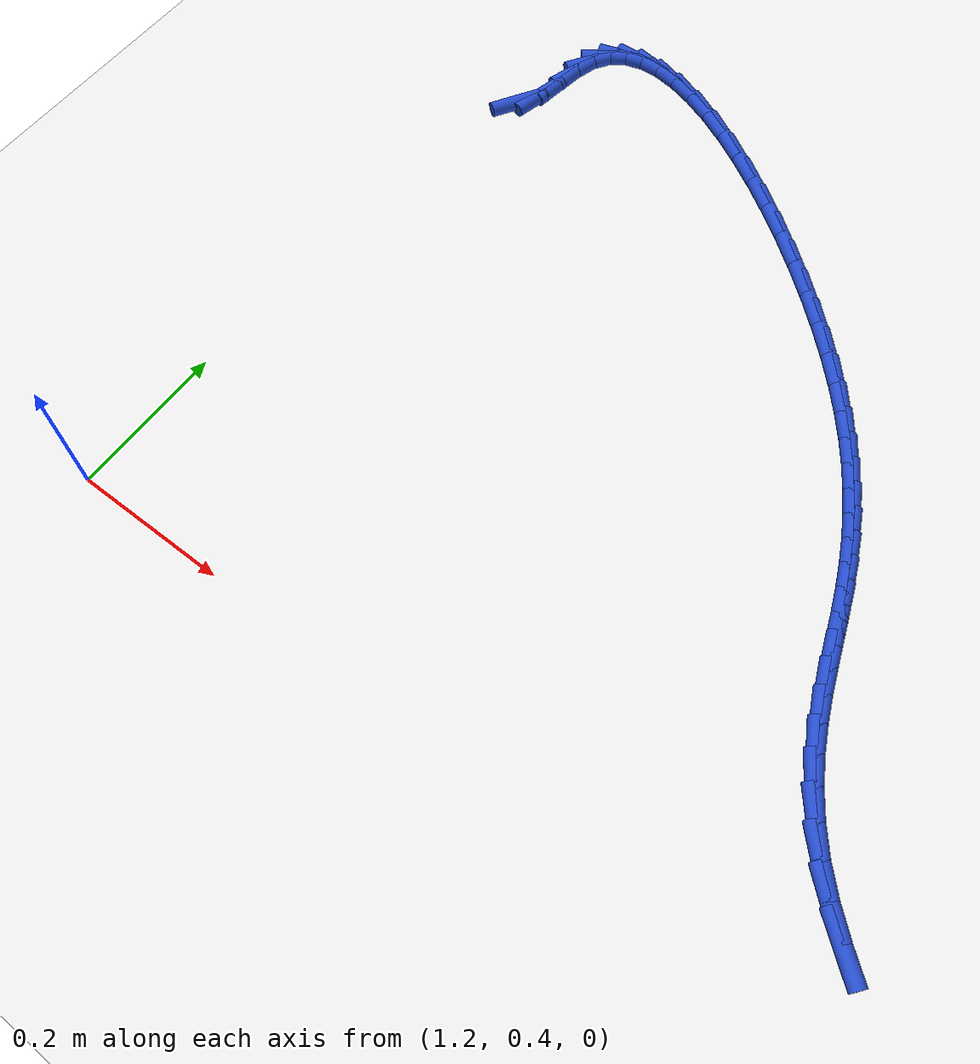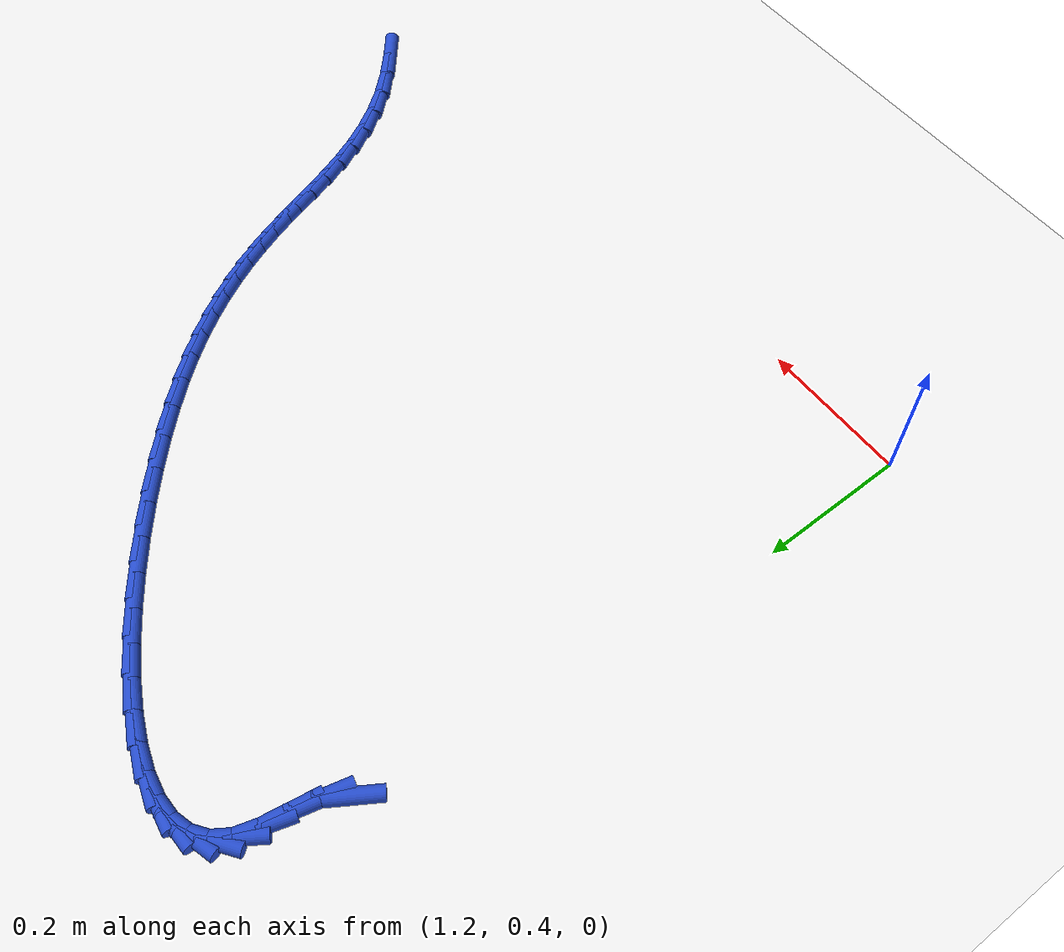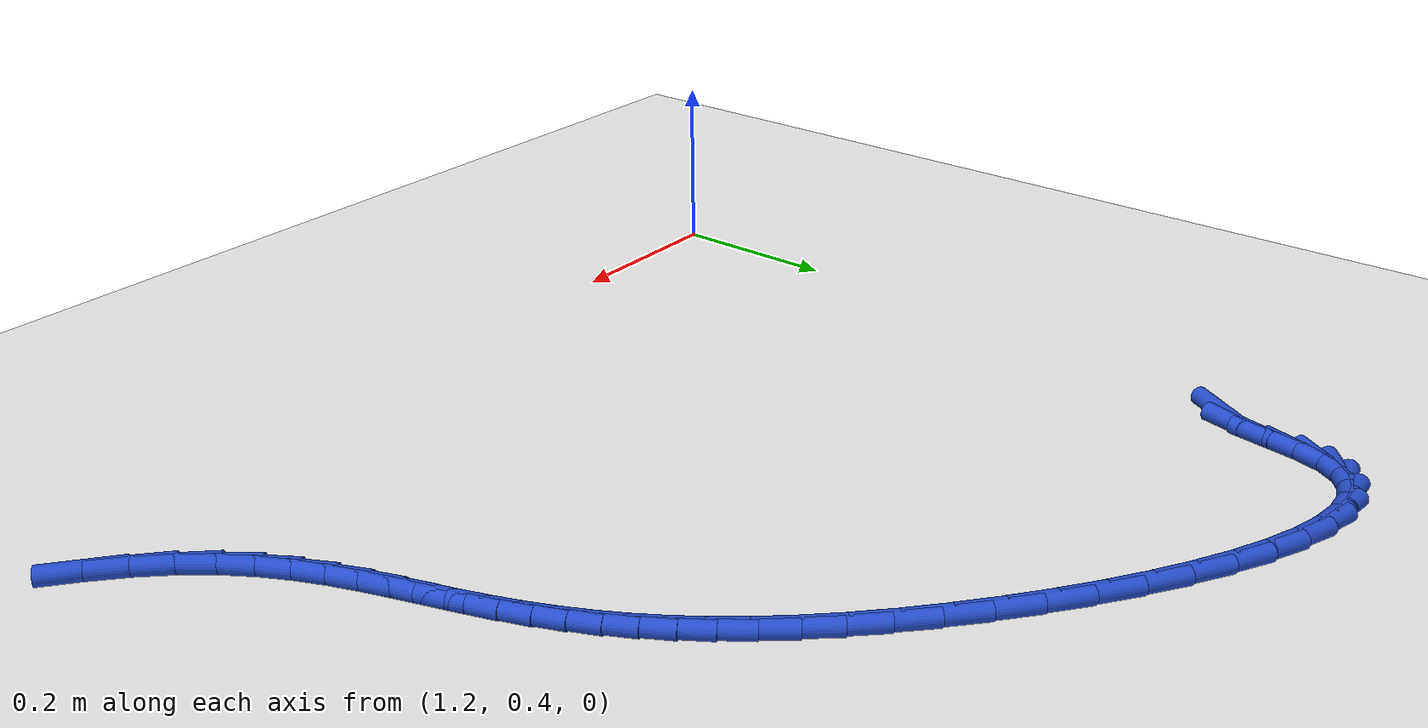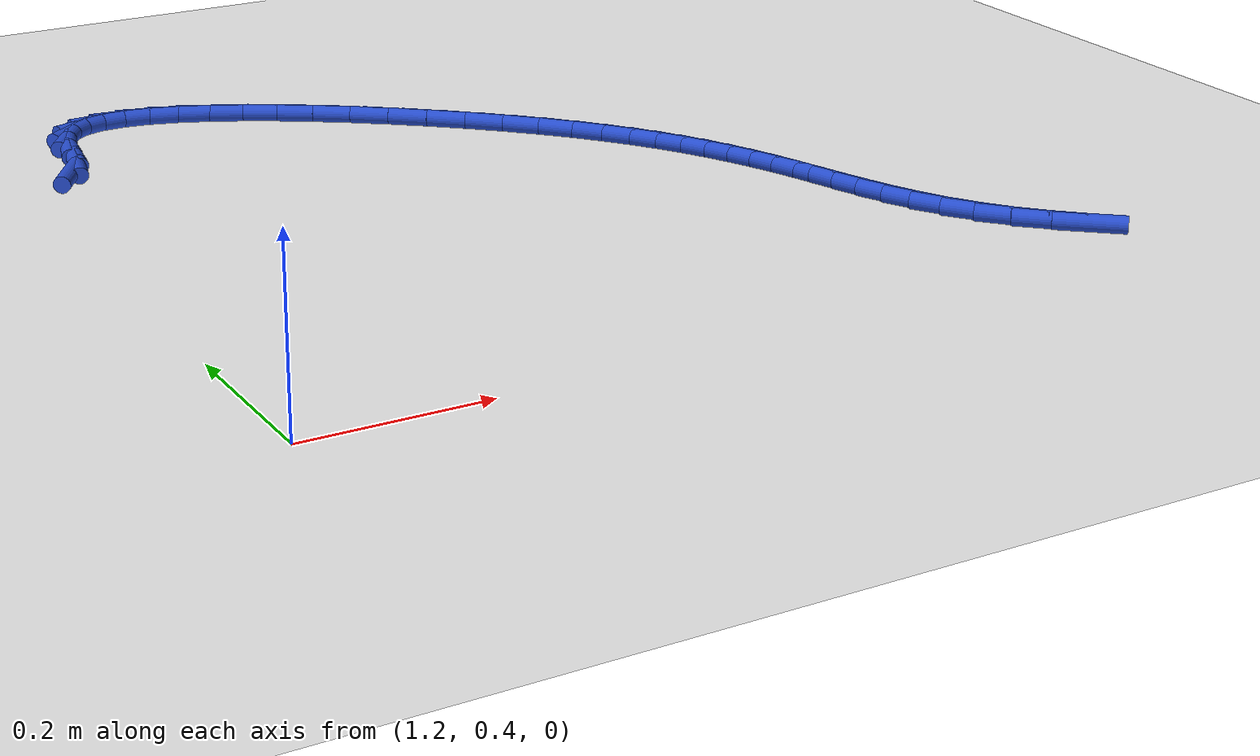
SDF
<sdf version="1.6">
 <world name="default">
  <model name="ground_plane">
   <static>1</static>
   <link name="link">
    <collision name="collision">
     <geometry><plane><normal>0 0 1</normal><size>100 100</size></plane></geometry>
     <surface><friction><ode><mu>100</mu><mu2>50</mu2></ode></friction></surface>
    </collision>
    <visual name="visual">
     <cast_shadows>0</cast_shadows>
     <geometry><plane><normal>0 0 1</normal><size>100 100</size></plane></geometry>
     <material>
      <script><uri>file://media/materials/scripts/gazebo.material</uri><name>Gazebo/WhiteGlow</name></script>
     </material>
    </visual>
   </link>
  </model>
  <model name="line">
   <link name="link_60">
    <pose>1.2613287150519539 1.1637590236306004 0.01 0 1.57 1.0088539453718253</pose>
    <collision name="collision">
     <geometry><cylinder><radius>0.01</radius><length>0.08</length></cylinder></geometry>
    </collision>
    <visual name="visual">
     <material>
      <script><name>Gazebo/Blue</name><uri>file://media/materials/scripts/gazebo.material</uri></script>
     </material>
     <geometry><cylinder><radius>0.01</radius><length>0.08</length></cylinder></geometry>
    </visual>
   </link>
   <link name="link_61">
    <pose>1.2775546202799208 1.1895283890998463 0.01 0 1.57 1.3288996908937807</pose>
    <collision name="collision">
     <geometry><cylinder><radius>0.01</radius><length>0.08</length></cylinder></geometry>
    </collision>
    <visual name="visual">
     <material>
      <script><name>Gazebo/Blue</name><uri>file://media/materials/scripts/gazebo.material</uri></script>
     </material>
     <geometry><cylinder><radius>0.01</radius><length>0.08</length></cylinder></geometry>
    </visual>
   </link>
   <link name="link_62">
    <pose>1.285683026691469 1.222473215488724 0.01 0 1.57 1.409470532503863</pose>
    <collision name="collision">
     <geometry><cylinder><radius>0.01</radius><length>0.08</length></cylinder></geometry>
    </collision>
    <visual name="visual">
     <material>
      <script><name>Gazebo/Blue</name><uri>file://media/materials/scripts/gazebo.material</uri></script>
     </material>
     <geometry><cylinder><radius>0.01</radius><length>0.08</length></cylinder></geometry>
    </visual>
   </link>
   <link name="link_63">
    <pose>1.2912226414353776 1.2565128627161324 0.01 0 1.57 1.2814580584756001</pose>
    <collision name="collision">
     <geometry><cylinder><radius>0.01</radius><length>0.08</length></cylinder></geometry>
    </collision>
    <visual name="visual">
     <material>
      <script><name>Gazebo/Blue</name><uri>file://media/materials/scripts/gazebo.material</uri></script>
     </material>
     <geometry><cylinder><radius>0.01</radius><length>0.08</length></cylinder></geometry>
    </visual>
   </link>
   <link name="link_64">
    <pose>1.299829876585776 1.285426059414801 0.01 0 1.57 0.986004935253308</pose>
    <collision name="collision">
     <geometry><cylinder><radius>0.01</radius><length>0.08</length></cylinder></geometry>
    </collision>
    <visual name="visual">
     <material>
      <script><name>Gazebo/Blue</name><uri>file://media/materials/scripts/gazebo.material</uri></script>
     </material>
     <geometry><cylinder><radius>0.01</radius><length>0.08</length></cylinder></geometry>
    </visual>
   </link>
   <link name="link_65">
    <pose>1.3138503569327997 1.3066038125582822 0.01 0 1.57 0.6323115348763421</pose>
    <collision name="collision">
     <geometry><cylinder><radius>0.01</radius><length>0.08</length></cylinder></geometry>
    </collision>
    <visual name="visual">
     <material>
      <script><name>Gazebo/Blue</name><uri>file://media/materials/scripts/gazebo.material</uri></script>
     </material>
     <geometry><cylinder><radius>0.01</radius><length>0.08</length></cylinder></geometry>
    </visual>
   </link>
   <link name="link_66">
    <pose>1.3328203102232936 1.320502358994393 0.01 0 1.57 0.2978365182773539</pose>
    <collision name="collision">
     <geometry><cylinder><radius>0.01</radius><length>0.08</length></cylinder></geometry>
    </collision>
    <visual name="visual">
     <material>
      <script><name>Gazebo/Blue</name><uri>file://media/materials/scripts/gazebo.material</uri></script>
     </material>
     <geometry><cylinder><radius>0.01</radius><length>0.08</length></cylinder></geometry>
    </visual>
   </link>
   <link name="link_67">
    <pose>1.3561868797001355 1.3276751323995513 0.01 0 1.57 0.036750148334386425</pose>
    <collision name="collision">
     <geometry><cylinder><radius>0.01</radius><length>0.08</length></cylinder></geometry>
    </collision>
    <visual name="visual">
     <material>
      <script><name>Gazebo/Blue</name><uri>file://media/materials/scripts/gazebo.material</uri></script>
     </material>
     <geometry><cylinder><radius>0.01</radius><length>0.08</length></cylinder></geometry>
    </visual>
   </link>
   <link name="link_68">
    <pose>1.3833972086062052 1.328675566450174 0.01 0 1.57 -0.15027761381971538</pose>
    <collision name="collision">
     <geometry><cylinder><radius>0.01</radius><length>0.08</length></cylinder></geometry>
    </collision>
    <visual name="visual">
     <material>
      <script><name>Gazebo/Blue</name><uri>file://media/materials/scripts/gazebo.material</uri></script>
     </material>
     <geometry><cylinder><radius>0.01</radius><length>0.08</length></cylinder></geometry>
    </visual>
   </link>
   <link name="link_69">
    <pose>1.4138984401843804 1.3240570948226789 0.01 0 1.57 -0.28349337409361886</pose>
    <collision name="collision">
     <geometry><cylinder><radius>0.01</radius><length>0.08</length></cylinder></geometry>
    </collision>
    <visual name="visual">
     <material>
      <script><name>Gazebo/Blue</name><uri>file://media/materials/scripts/gazebo.material</uri></script>
     </material>
     <geometry><cylinder><radius>0.01</radius><length>0.08</length></cylinder></geometry>
    </visual>
   </link>
   <link name="link_70">
    <pose>1.447137717677542 1.3143731511934837 0.01 0 1.57 -0.3811436877735063</pose>
    <collision name="collision">
     <geometry><cylinder><radius>0.01</radius><length>0.08</length></cylinder></geometry>
    </collision>
    <visual name="visual">
     <material>
      <script><name>Gazebo/Blue</name><uri>file://media/materials/scripts/gazebo.material</uri></script>
     </material>
     <geometry><cylinder><radius>0.01</radius><length>0.08</length></cylinder></geometry>
    </visual>
   </link>
   <link name="link_71">
    <pose>1.4825621843285672 1.3001771692390072 0.01 0 1.57 -0.45554503836466154</pose>
    <collision name="collision">
     <geometry><cylinder><radius>0.01</radius><length>0.08</length></cylinder></geometry>
    </collision>
    <visual name="visual">
     <material>
      <script><name>Gazebo/Blue</name><uri>file://media/materials/scripts/gazebo.material</uri></script>
     </material>
     <geometry><cylinder><radius>0.01</radius><length>0.08</length></cylinder></geometry>
    </visual>
   </link>
   <link name="link_72">
    <pose>1.5196189833803355 1.2820225826356655 0.01 0 1.57 -0.5145401779376131</pose>
    <collision name="collision">
     <geometry><cylinder><radius>0.01</radius><length>0.08</length></cylinder></geometry>
    </collision>
    <visual name="visual">
     <material>
      <script><name>Gazebo/Blue</name><uri>file://media/materials/scripts/gazebo.material</uri></script>
     </material>
     <geometry><cylinder><radius>0.01</radius><length>0.08</length></cylinder></geometry>
    </visual>
   </link>
   <link name="link_73">
    <pose>1.5577552580757263 1.260462825059877 0.01 0 1.57 -0.5631835938030051</pose>
    <collision name="collision">
     <geometry><cylinder><radius>0.01</radius><length>0.08</length></cylinder></geometry>
    </collision>
    <visual name="visual">
     <material>
      <script><name>Gazebo/Blue</name><uri>file://media/materials/scripts/gazebo.material</uri></script>
     </material>
     <geometry><cylinder><radius>0.01</radius><length>0.08</length></cylinder></geometry>
    </visual>
   </link>
   <link name="link_74">
    <pose>1.5964181516576184 1.2360513301880593 0.01 0 1.57 -0.6048680178333764</pose>
    <collision name="collision">
     <geometry><cylinder><radius>0.01</radius><length>0.08</length></cylinder></geometry>
    </collision>
    <visual name="visual">
     <material>
      <script><name>Gazebo/Blue</name><uri>file://media/materials/scripts/gazebo.material</uri></script>
     </material>
     <geometry><cylinder><radius>0.01</radius><length>0.08</length></cylinder></geometry>
    </visual>
   </link>
   <link name="link_75">
    <pose>1.6350548073688904 1.209341531696631 0.01 0 1.57 -0.6420111348117149</pose>
    <collision name="collision">
     <geometry><cylinder><radius>0.01</radius><length>0.08</length></cylinder></geometry>
    </collision>
    <visual name="visual">
     <material>
      <script><name>Gazebo/Blue</name><uri>file://media/materials/scripts/gazebo.material</uri></script>
     </material>
     <geometry><cylinder><radius>0.01</radius><length>0.08</length></cylinder></geometry>
    </visual>
   </link>
   <link name="link_76">
    <pose>1.6731123684524216 1.1808868632620078 0.01 0 1.57 -0.6764825730446103</pose>
    <collision name="collision">
     <geometry><cylinder><radius>0.01</radius><length>0.08</length></cylinder></geometry>
    </collision>
    <visual name="visual">
     <material>
      <script><name>Gazebo/Blue</name><uri>file://media/materials/scripts/gazebo.material</uri></script>
     </material>
     <geometry><cylinder><radius>0.01</radius><length>0.08</length></cylinder></geometry>
    </visual>
   </link>
   <link name="link_77">
    <pose>1.7100379781510902 1.151240758560609 0.01 0 1.57 -0.7098960055167061</pose>
    <collision name="collision">
     <geometry><cylinder><radius>0.01</radius><length>0.08</length></cylinder></geometry>
    </collision>
    <visual name="visual">
     <material>
      <script><name>Gazebo/Blue</name><uri>file://media/materials/scripts/gazebo.material</uri></script>
     </material>
     <geometry><cylinder><radius>0.01</radius><length>0.08</length></cylinder></geometry>
    </visual>
   </link>
   <link name="link_78">
    <pose>1.745278779707777 1.1209566512688516 0.01 0 1.57 -0.7438506000584001</pose>
    <collision name="collision">
     <geometry><cylinder><radius>0.01</radius><length>0.08</length></cylinder></geometry>
    </collision>
    <visual name="visual">
     <material>
      <script><name>Gazebo/Blue</name><uri>file://media/materials/scripts/gazebo.material</uri></script>
     </material>
     <geometry><cylinder><radius>0.01</radius><length>0.08</length></cylinder></geometry>
    </visual>
   </link>
   <link name="link_79">
    <pose>1.7782819163653583 1.0905879750631535 0.01 0 1.57 -0.7801794630172036</pose>
    <collision name="collision">
     <geometry><cylinder><radius>0.01</radius><length>0.08</length></cylinder></geometry>
    </collision>
    <visual name="visual">
     <material>
      <script><name>Gazebo/Blue</name><uri>file://media/materials/scripts/gazebo.material</uri></script>
     </material>
     <geometry><cylinder><radius>0.01</radius><length>0.08</length></cylinder></geometry>
    </visual>
   </link>
   <link name="link_80">
    <pose>1.8085025936129384 1.0606810884048754 0.01 0 1.57 -0.8202355585087977</pose>
    <collision name="collision">
     <geometry><cylinder><radius>0.01</radius><length>0.08</length></cylinder></geometry>
    </collision>
    <visual name="visual">
     <material>
      <script><name>Gazebo/Blue</name><uri>file://media/materials/scripts/gazebo.material</uri></script>
     </material>
     <geometry><cylinder><radius>0.01</radius><length>0.08</length></cylinder></geometry>
    </visual>
   </link>
   <link name="link_81">
    <pose>1.835720057260768 1.0314979804994762 0.01 0 1.57 -0.8635799886573674</pose>
    <collision name="collision">
     <geometry><cylinder><radius>0.01</radius><length>0.08</length></cylinder></geometry>
    </collision>
    <visual name="visual">
     <material>
      <script><name>Gazebo/Blue</name><uri>file://media/materials/scripts/gazebo.material</uri></script>
     </material>
     <geometry><cylinder><radius>0.01</radius><length>0.08</length></cylinder></geometry>
    </visual>
   </link>
   <link name="link_82">
    <pose>1.8601407422619318 1.0029257506058622 0.01 0 1.57 -0.9096627678762059</pose>
    <collision name="collision">
     <geometry><cylinder><radius>0.01</radius><length>0.08</length></cylinder></geometry>
    </collision>
    <visual name="visual">
     <material>
      <script><name>Gazebo/Blue</name><uri>file://media/materials/scripts/gazebo.material</uri></script>
     </material>
     <geometry><cylinder><radius>0.01</radius><length>0.08</length></cylinder></geometry>
    </visual>
   </link>
   <link name="link_83">
    <pose>1.8820002707522314 0.9748258840797032 0.01 0 1.57 -0.9577107602997205</pose>
    <collision name="collision">
     <geometry><cylinder><radius>0.01</radius><length>0.08</length></cylinder></geometry>
    </collision>
    <visual name="visual">
     <material>
      <script><name>Gazebo/Blue</name><uri>file://media/materials/scripts/gazebo.material</uri></script>
     </material>
     <geometry><cylinder><radius>0.01</radius><length>0.08</length></cylinder></geometry>
    </visual>
   </link>
   <link name="link_84">
    <pose>1.901534264867468 0.947059866276669 0.01 0 1.57 -1.0066762282126047</pose>
    <collision name="collision">
     <geometry><cylinder><radius>0.01</radius><length>0.08</length></cylinder></geometry>
    </collision>
    <visual name="visual">
     <material>
      <script><name>Gazebo/Blue</name><uri>file://media/materials/scripts/gazebo.material</uri></script>
     </material>
     <geometry><cylinder><radius>0.01</radius><length>0.08</length></cylinder></geometry>
    </visual>
   </link>
   <link name="link_85">
    <pose>1.918978346743443 0.9194891825524287 0.01 0 1.57 -1.055285780561555</pose>
    <collision name="collision">
     <geometry><cylinder><radius>0.01</radius><length>0.08</length></cylinder></geometry>
    </collision>
    <visual name="visual">
     <material>
      <script><name>Gazebo/Blue</name><uri>file://media/materials/scripts/gazebo.material</uri></script>
     </material>
     <geometry><cylinder><radius>0.01</radius><length>0.08</length></cylinder></geometry>
    </visual>
   </link>
   <link name="link_86">
    <pose>1.9345681385159563 0.8919753182626532 0.01 0 1.57 -1.102136080951915</pose>
    <collision name="collision">
     <geometry><cylinder><radius>0.01</radius><length>0.08</length></cylinder></geometry>
    </collision>
    <visual name="visual">
     <material>
      <script><name>Gazebo/Blue</name><uri>file://media/materials/scripts/gazebo.material</uri></script>
     </material>
     <geometry><cylinder><radius>0.01</radius><length>0.08</length></cylinder></geometry>
    </visual>
   </link>
   <link name="link_87">
    <pose>1.9485392623208082 0.8643797587630113 0.01 0 1.57 -1.1458223050836787</pose>
    <collision name="collision">
     <geometry><cylinder><radius>0.01</radius><length>0.08</length></cylinder></geometry>
    </collision>
    <visual name="visual">
     <material>
      <script><name>Gazebo/Blue</name><uri>file://media/materials/scripts/gazebo.material</uri></script>
     </material>
     <geometry><cylinder><radius>0.01</radius><length>0.08</length></cylinder></geometry>
    </visual>
   </link>
   <link name="link_88">
    <pose>1.961127340293801 0.836563989409173 0.01 0 1.57 -1.1850731177935216</pose>
    <collision name="collision">
     <geometry><cylinder><radius>0.01</radius><length>0.08</length></cylinder></geometry>
    </collision>
    <visual name="visual">
     <material>
      <script><name>Gazebo/Blue</name><uri>file://media/materials/scripts/gazebo.material</uri></script>
     </material>
     <geometry><cylinder><radius>0.01</radius><length>0.08</length></cylinder></geometry>
    </visual>
   </link>
   <link name="link_89">
    <pose>1.9725679945707353 0.8083894955568077 0.01 0 1.57 -1.2188603733678582</pose>
    <collision name="collision">
     <geometry><cylinder><radius>0.01</radius><length>0.08</length></cylinder></geometry>
    </collision>
    <visual name="visual">
     <material>
      <script><name>Gazebo/Blue</name><uri>file://media/materials/scripts/gazebo.material</uri></script>
     </material>
     <geometry><cylinder><radius>0.01</radius><length>0.08</length></cylinder></geometry>
    </visual>
   </link>
   <link name="link_90">
    <pose>1.9830969221171408 0.7797178164485927 0.01 0 1.57 -1.2431803243223802</pose>
    <collision name="collision">
     <geometry><cylinder><radius>0.01</radius><length>0.08</length></cylinder></geometry>
    </collision>
    <visual name="visual">
     <material>
      <script><name>Gazebo/Blue</name><uri>file://media/materials/scripts/gazebo.material</uri></script>
     </material>
     <geometry><cylinder><radius>0.01</radius><length>0.08</length></cylinder></geometry>
    </visual>
   </link>
   <link name="link_91">
    <pose>1.9930362533440042 0.7504727344982535 0.01 0 1.57 -1.2484213105448203</pose>
    <collision name="collision">
     <geometry><cylinder><radius>0.01</radius><length>0.08</length></cylinder></geometry>
    </collision>
    <visual name="visual">
     <material>
      <script><name>Gazebo/Blue</name><uri>file://media/materials/scripts/gazebo.material</uri></script>
     </material>
     <geometry><cylinder><radius>0.01</radius><length>0.08</length></cylinder></geometry>
    </visual>
   </link>
   <link name="link_92">
    <pose>2.002961058099886 0.7207601809693633 0.01 0 1.57 -1.2336162319161859</pose>
    <collision name="collision">
     <geometry><cylinder><radius>0.01</radius><length>0.08</length></cylinder></geometry>
    </collision>
    <visual name="visual">
     <material>
      <script><name>Gazebo/Blue</name><uri>file://media/materials/scripts/gazebo.material</uri></script>
     </material>
     <geometry><cylinder><radius>0.01</radius><length>0.08</length></cylinder></geometry>
    </visual>
   </link>
   <link name="link_93">
    <pose>2.0134924318225664 0.6907192314553022 0.01 0 1.57 -1.1998239520363527</pose>
    <collision name="collision">
     <geometry><cylinder><radius>0.01</radius><length>0.08</length></cylinder></geometry>
    </collision>
    <visual name="visual">
     <material>
      <script><name>Gazebo/Blue</name><uri>file://media/materials/scripts/gazebo.material</uri></script>
     </material>
     <geometry><cylinder><radius>0.01</radius><length>0.08</length></cylinder></geometry>
    </visual>
   </link>
   <link name="link_94">
    <pose>2.025251469949828 0.6604889615494511 0.01 0 1.57 -1.1484487635251737</pose>
    <collision name="collision">
     <geometry><cylinder><radius>0.01</radius><length>0.08</length></cylinder></geometry>
    </collision>
    <visual name="visual">
     <material>
      <script><name>Gazebo/Blue</name><uri>file://media/materials/scripts/gazebo.material</uri></script>
     </material>
     <geometry><cylinder><radius>0.01</radius><length>0.08</length></cylinder></geometry>
    </visual>
   </link>
   <link name="link_95">
    <pose>2.0388592679194506 0.6302084468451901 0.01 0 1.57 -1.0814730069164187</pose>
    <collision name="collision">
     <geometry><cylinder><radius>0.01</radius><length>0.08</length></cylinder></geometry>
    </collision>
    <visual name="visual">
     <material>
      <script><name>Gazebo/Blue</name><uri>file://media/materials/scripts/gazebo.material</uri></script>
     </material>
     <geometry><cylinder><radius>0.01</radius><length>0.08</length></cylinder></geometry>
    </visual>
   </link>
   <link name="link_96">
    <pose>2.0549369211692166 0.6000167629358985 0.01 0 1.57 -1.0016776258215283</pose>
    <collision name="collision">
     <geometry><cylinder><radius>0.01</radius><length>0.08</length></cylinder></geometry>
    </collision>
    <visual name="visual">
     <material>
      <script><name>Gazebo/Blue</name><uri>file://media/materials/scripts/gazebo.material</uri></script>
     </material>
     <geometry><cylinder><radius>0.01</radius><length>0.08</length></cylinder></geometry>
    </visual>
   </link>
   <link name="link_97">
    <pose>2.0741055251369063 0.5700529854149579 0.01 0 1.57 -0.9126877635100309</pose>
    <collision name="collision">
     <geometry><cylinder><radius>0.01</radius><length>0.08</length></cylinder></geometry>
    </collision>
    <visual name="visual">
     <material>
      <script><name>Gazebo/Blue</name><uri>file://media/materials/scripts/gazebo.material</uri></script>
     </material>
     <geometry><cylinder><radius>0.01</radius><length>0.08</length></cylinder></geometry>
    </visual>
   </link>
   <link name="link_98">
    <pose>2.0969861752603007 0.540456189875748 0.01 0 1.57 -0.8192320600122266</pose>
    <collision name="collision">
     <geometry><cylinder><radius>0.01</radius><length>0.08</length></cylinder></geometry>
    </collision>
    <visual name="visual">
     <material>
      <script><name>Gazebo/Blue</name><uri>file://media/materials/scripts/gazebo.material</uri></script>
     </material>
     <geometry><cylinder><radius>0.01</radius><length>0.08</length></cylinder></geometry>
    </visual>
   </link>
   <link name="link_99">
    <pose>2.1241718656080084 0.5113657312495499 0.01 0 1.57 -0.7411167437971106</pose>
    <collision name="collision">
     <geometry><cylinder><radius>0.01</radius><length>0.08</length></cylinder></geometry>
    </collision>
    <visual name="visual">
     <material>
      <script><name>Gazebo/Blue</name><uri>file://media/materials/scripts/gazebo.material</uri></script>
     </material>
     <geometry><cylinder><radius>0.01</radius><length>0.08</length></cylinder></geometry>
    </visual>
   </link>
   <link name="link_100">
    <pose>2.1552433103514126 0.4829310269005398 0.01 0 1.57 -0.692854563692672</pose>
    <collision name="collision">
     <geometry><cylinder><radius>0.01</radius><length>0.08</length></cylinder></geometry>
    </collision>
    <visual name="visual">
     <material>
      <script><name>Gazebo/Blue</name><uri>file://media/materials/scripts/gazebo.material</uri></script>
     </material>
     <geometry><cylinder><radius>0.01</radius><length>0.08</length></cylinder></geometry>
    </visual>
   </link>
  </model>
 </world>
</sdf>
